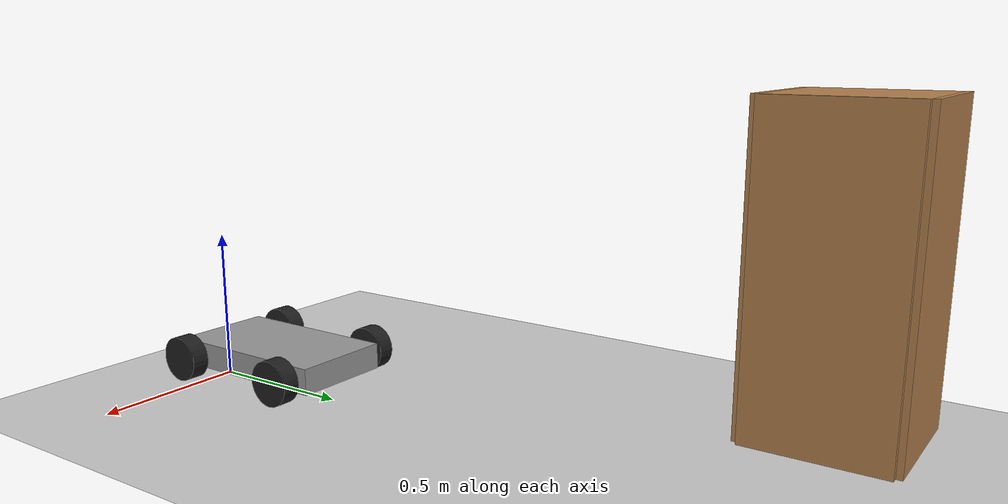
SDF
<sdf version="1.7">
 <world name="default">
  <light name="sun" type="directional">
   <pose>0 0 10 0 -0 0</pose>
   <diffuse>0.8 0.8 0.8 1</diffuse>
   <specular>0.2 0.2 0.2 1</specular>
   <attenuation>
    <range>1000</range>
    <constant>0.9</constant>
    <linear>0.01</linear>
    <quadratic>0.001</quadratic>
   </attenuation>
   <direction>-0.5 0.1 -0.9</direction>
   <spot><inner_angle>0</inner_angle><outer_angle>0</outer_angle><falloff>0</falloff></spot>
  </light>
  <model name="ground_plane">
   <static>1</static>
   <link name="link">
    <collision name="collision">
     <geometry><plane><normal>0 0 1</normal><size>100 100</size></plane></geometry>
     <surface>
      <contact><collide_bitmask>65535</collide_bitmask></contact>
      <friction><ode><mu>100</mu><mu2>50</mu2></ode></friction>
     </surface>
    </collision>
    <visual name="visual">
     <cast_shadows>0</cast_shadows>
     <geometry><plane><normal>0 0 1</normal><size>100 100</size></plane></geometry>
     <material>
      <script><uri>file://media/materials/scripts/gazebo.material</uri><name>Gazebo/Grey</name></script>
     </material>
    </visual>
   </link>
  </model>
  <gravity>0 0 -9.8</gravity>
  <magnetic_field>6e-06 2.3e-05 -4.2e-05</magnetic_field>
  <atmosphere type="adiabatic"/>
  <physics type="ode">
   <max_step_size>0.001</max_step_size>
   <real_time_factor>1</real_time_factor>
   <real_time_update_rate>1000</real_time_update_rate>
  </physics>
  <scene><ambient>0.4 0.4 0.4 1</ambient><background>0.7 0.7 0.7 1</background><shadows>1</shadows></scene>
  <spherical_coordinates>
   <surface_model>EARTH_WGS84</surface_model>
   <latitude_deg>0</latitude_deg>
   <longitude_deg>0</longitude_deg>
   <elevation>0</elevation>
   <heading_deg>0</heading_deg>
  </spherical_coordinates>
  <model name="my_bot">
   <link name="base_link">
    <inertial>
     <pose>0 0 0.08 0 -0 0</pose>
     <mass>1</mass>
     <inertia>
      <ixx>0.0105938</ixx>
      <ixy>0</ixy>
      <ixz>0</ixz>
      <iyy>0.0321937</iyy>
      <iyz>0</iyz>
      <izz>0.0414375</izz>
     </inertia>
    </inertial>
    <collision name="base_link_fixed_joint_lump__sase_collision">
     <pose>0 0 0.08 0 -0 0</pose>
     <geometry><box><size>0.615 0.345 0.09</size></box></geometry>
    </collision>
    <collision name="base_link_fixed_joint_lump__arka_teker_cubugu_collision_1">
     <pose>-0.224 0 0.08 1.5708 -0 0</pose>
     <geometry><cylinder><length>0.49</length><radius>0.01</radius></cylinder></geometry>
    </collision>
    <collision name="base_link_fixed_joint_lump__on_teker_cubugu_collision_2">
     <pose>0.224 0 0.08 1.5708 -0 0</pose>
     <geometry><cylinder><length>0.49</length><radius>0.01</radius></cylinder></geometry>
    </collision>
    <visual name="base_link_fixed_joint_lump__sase_visual">
     <pose>0 0 0.08 0 -0 0</pose>
     <geometry><box><size>0.615 0.345 0.09</size></box></geometry>
     <material>
      <script><name>Gazebo/Grey</name><uri>file://media/materials/scripts/gazebo.material</uri></script>
     </material>
    </visual>
    <visual name="base_link_fixed_joint_lump__arka_teker_cubugu_visual_1">
     <pose>-0.224 0 0.08 1.5708 -0 0</pose>
     <geometry><cylinder><length>0.49</length><radius>0.01</radius></cylinder></geometry>
     <material>
      <script><name>Gazebo/Blue</name><uri>file://media/materials/scripts/gazebo.material</uri></script>
     </material>
    </visual>
    <visual name="base_link_fixed_joint_lump__on_teker_cubugu_visual_2">
     <pose>0.224 0 0.08 1.5708 -0 0</pose>
     <geometry><cylinder><length>0.49</length><radius>0.01</radius></cylinder></geometry>
     <material>
      <script><name>Gazebo/Blue</name><uri>file://media/materials/scripts/gazebo.material</uri></script>
     </material>
    </visual>
   </link>
   <joint name="sag_arka_teker_joint" type="revolute">
    <pose relative_to="base_link">-0.225 0.228 0.0825 -1.5708 0 0</pose>
    <parent>base_link</parent>
    <child>sag_arka_teker</child>
    <axis>
     <xyz>0 0 -1</xyz>
     <limit><lower>-1e+16</lower><upper>1e+16</upper></limit>
     <dynamics><spring_reference>0</spring_reference><spring_stiffness>0</spring_stiffness></dynamics>
    </axis>
   </joint>
   <link name="sag_arka_teker">
    <pose relative_to="sag_arka_teker_joint">0 0 0 0 -0 0</pose>
    <inertial>
     <pose>-0.225 0.228 0.0825 -1.5708 0 0</pose>
     <mass>0.5</mass>
     <inertia>
      <ixx>0.000900781</ixx>
      <ixy>0</ixy>
      <ixz>0</ixz>
      <iyy>0.000900781</iyy>
      <iyz>0</iyz>
      <izz>0.00150156</izz>
     </inertia>
    </inertial>
    <collision name="sag_arka_teker_collision">
     <geometry><cylinder><length>0.06</length><radius>0.0775</radius></cylinder></geometry>
    </collision>
    <visual name="sag_arka_teker_visual">
     <geometry><cylinder><length>0.06</length><radius>0.0775</radius></cylinder></geometry>
     <material>
      <script><name>Gazebo/Black</name><uri>file://media/materials/scripts/gazebo.material</uri></script>
     </material>
    </visual>
   </link>
   <joint name="sag_on_teker_joint" type="revolute">
    <pose relative_to="base_link">0.225 0.228 0.0825 -1.5708 0 0</pose>
    <parent>base_link</parent>
    <child>sag_on_teker</child>
    <axis>
     <xyz>0 0 -1</xyz>
     <limit><lower>-1e+16</lower><upper>1e+16</upper></limit>
     <dynamics><spring_reference>0</spring_reference><spring_stiffness>0</spring_stiffness></dynamics>
    </axis>
   </joint>
   <link name="sag_on_teker">
    <pose relative_to="sag_on_teker_joint">0 0 0 0 -0 0</pose>
    <inertial>
     <pose>0.225 0.228 0.0825 1.5708 -0 0</pose>
     <mass>0.5</mass>
     <inertia>
      <ixx>0.000900781</ixx>
      <ixy>0</ixy>
      <ixz>0</ixz>
      <iyy>0.000900781</iyy>
      <iyz>0</iyz>
      <izz>0.00150156</izz>
     </inertia>
    </inertial>
    <collision name="sag_on_teker_collision">
     <geometry><cylinder><length>0.06</length><radius>0.0775</radius></cylinder></geometry>
    </collision>
    <visual name="sag_on_teker_visual">
     <geometry><cylinder><length>0.06</length><radius>0.0775</radius></cylinder></geometry>
     <material>
      <script><name>Gazebo/Black</name><uri>file://media/materials/scripts/gazebo.material</uri></script>
     </material>
    </visual>
   </link>
   <joint name="sol_arka_teker_joint" type="revolute">
    <pose relative_to="base_link">-0.225 -0.228 0.0825 1.5708 -0 0</pose>
    <parent>base_link</parent>
    <child>sol_arka_teker</child>
    <axis>
     <xyz>0 0 1</xyz>
     <limit><lower>-1e+16</lower><upper>1e+16</upper></limit>
     <dynamics><spring_reference>0</spring_reference><spring_stiffness>0</spring_stiffness></dynamics>
    </axis>
   </joint>
   <link name="sol_arka_teker">
    <pose relative_to="sol_arka_teker_joint">0 0 0 0 -0 0</pose>
    <inertial>
     <pose>-0.225 -0.228 0.0825 -1.5708 0 0</pose>
     <mass>0.5</mass>
     <inertia>
      <ixx>0.000900781</ixx>
      <ixy>0</ixy>
      <ixz>0</ixz>
      <iyy>0.000900781</iyy>
      <iyz>0</iyz>
      <izz>0.00150156</izz>
     </inertia>
    </inertial>
    <collision name="sol_arka_teker_collision">
     <geometry><cylinder><length>0.06</length><radius>0.0775</radius></cylinder></geometry>
    </collision>
    <visual name="sol_arka_teker_visual">
     <geometry><cylinder><length>0.06</length><radius>0.0775</radius></cylinder></geometry>
     <material>
      <script><name>Gazebo/Black</name><uri>file://media/materials/scripts/gazebo.material</uri></script>
     </material>
    </visual>
   </link>
   <joint name="sol_on_teker_joint" type="revolute">
    <pose relative_to="base_link">0.225 -0.228 0.0825 1.5708 -0 0</pose>
    <parent>base_link</parent>
    <child>sol_on_teker</child>
    <axis>
     <xyz>0 0 1</xyz>
     <limit><lower>-1e+16</lower><upper>1e+16</upper></limit>
     <dynamics><spring_reference>0</spring_reference><spring_stiffness>0</spring_stiffness></dynamics>
    </axis>
   </joint>
   <link name="sol_on_teker">
    <pose relative_to="sol_on_teker_joint">0 0 0 0 -0 0</pose>
    <inertial>
     <pose>0.225 -0.228 0.0825 1.5708 -0 0</pose>
     <mass>0.5</mass>
     <inertia>
      <ixx>0.000900781</ixx>
      <ixy>0</ixy>
      <ixz>0</ixz>
      <iyy>0.000900781</iyy>
      <iyz>0</iyz>
      <izz>0.00150156</izz>
     </inertia>
    </inertial>
    <collision name="sol_on_teker_collision">
     <geometry><cylinder><length>0.06</length><radius>0.0775</radius></cylinder></geometry>
    </collision>
    <visual name="sol_on_teker_visual">
     <geometry><cylinder><length>0.06</length><radius>0.0775</radius></cylinder></geometry>
     <material>
      <script><name>Gazebo/Black</name><uri>file://media/materials/scripts/gazebo.material</uri></script>
     </material>
    </visual>
   </link>
   <plugin name="front_wheel" filename="libgazebo_ros_diff_drive.so">
    <left_joint>sol_on_teker_joint</left_joint>
    <right_joint>sag_on_teker_joint</right_joint>
    <wheel_separation>0.44</wheel_separation>
    <wheel_diameter>0.33</wheel_diameter>
    <max_wheel_torque>5</max_wheel_torque>
    <max_wheel_acceleration>5</max_wheel_acceleration>
    <odometry_frame>odom</odometry_frame>
    <robot_base_frame>base_link</robot_base_frame>
    <publish_odom>1</publish_odom>
    <publish_odom_tf>1</publish_odom_tf>
    <publish_wheel_tf>1</publish_wheel_tf>
   </plugin>
   <static>0</static>
   <plugin name="rear_wheel" filename="libgazebo_ros_diff_drive.so">
    <left_joint>sol_arka_teker_joint</left_joint>
    <right_joint>sag_arka_teker_joint</right_joint>
    <wheel_separation>0.44</wheel_separation>
    <wheel_diameter>0.33</wheel_diameter>
    <max_wheel_torque>5</max_wheel_torque>
    <max_wheel_acceleration>5</max_wheel_acceleration>
    <odometry_frame>odom</odometry_frame>
    <robot_base_frame>base_link</robot_base_frame>
    <publish_odom>1</publish_odom>
    <publish_odom_tf>1</publish_odom_tf>
    <publish_wheel_tf>1</publish_wheel_tf>
   </plugin>
   <pose>-0.095385 0.155174 -0.005001 5e-06 1e-06 1.56013</pose>
  </model>
  <model name="cabinet">
   <static>1</static>
   <link name="cabinet_bottom_plate">
    <inertial>
     <pose>0 0 -1 0 -0 0</pose>
     <inertia><ixx>2.05</ixx><ixy>0</ixy><ixz>0</ixz><iyy>2.05</iyy><iyz>0</iyz><izz>2.05</izz></inertia>
     <mass>25</mass>
    </inertial>
    <collision name="cabinet_bottom_plate_geom">
     <pose>0 0 0.01 0 -0 0</pose>
     <geometry><box><size>0.45 0.45 0.02</size></box></geometry>
    </collision>
    <visual name="cabinet_bottom_plate_geom_visual">
     <pose>0 0 0.01 0 -0 0</pose>
     <geometry><box><size>0.45 0.45 0.02</size></box></geometry>
     <material>
      <script><uri>file://media/materials/scripts/gazebo.material</uri><name>Gazebo/Wood</name></script>
     </material>
    </visual>
    <collision name="cabinet_bottom_plate_geom_cabinet_back_plate">
     <pose>0.235 0 0.51 0 -0 0</pose>
     <geometry><box><size>0.02 0.45 1.02</size></box></geometry>
    </collision>
    <visual name="cabinet_bottom_plate_geom_cabinet_back_plate_visual">
     <pose>0.235 0 0.51 0 -0 0</pose>
     <geometry><box><size>0.02 0.45 1.02</size></box></geometry>
     <material>
      <script><uri>file://media/materials/scripts/gazebo.material</uri><name>Gazebo/Wood</name></script>
     </material>
    </visual>
    <collision name="cabinet_bottom_plate_geom_cabinet_left_plate">
     <pose>0 0.235 0.51 0 -0 0</pose>
     <geometry><box><size>0.45 0.02 1.02</size></box></geometry>
    </collision>
    <visual name="cabinet_bottom_plate_geom_cabinet_left_plate_visual">
     <pose>0 0.235 0.51 0 -0 0</pose>
     <geometry><box><size>0.45 0.02 1.02</size></box></geometry>
     <material>
      <script><uri>file://media/materials/scripts/gazebo.material</uri><name>Gazebo/Wood</name></script>
     </material>
    </visual>
    <collision name="cabinet_bottom_plate_geom_cabinet_middle_plate">
     <pose>0 0 0.51 0 -0 0</pose>
     <geometry><box><size>0.45 0.45 0.02</size></box></geometry>
    </collision>
    <visual name="cabinet_bottom_plate_geom_cabinet_middle_plate_visual">
     <pose>0 0 0.51 0 -0 0</pose>
     <geometry><box><size>0.45 0.45 0.02</size></box></geometry>
     <material>
      <script><uri>file://media/materials/scripts/gazebo.material</uri><name>Gazebo/Wood</name></script>
     </material>
    </visual>
    <collision name="cabinet_bottom_plate_geom_cabinet_right_plate">
     <pose>0 -0.235 0.51 0 -0 0</pose>
     <geometry><box><size>0.45 0.02 1.02</size></box></geometry>
    </collision>
    <visual name="cabinet_bottom_plate_geom_cabinet_right_plate_visual">
     <pose>0 -0.235 0.51 0 -0 0</pose>
     <geometry><box><size>0.45 0.02 1.02</size></box></geometry>
     <material>
      <script><uri>file://media/materials/scripts/gazebo.material</uri><name>Gazebo/Wood</name></script>
     </material>
    </visual>
    <collision name="cabinet_bottom_plate_geom_cabinet_top_plate">
     <pose>0 0 1.01 0 -0 0</pose>
     <geometry><box><size>0.45 0.45 0.02</size></box></geometry>
    </collision>
    <visual name="cabinet_bottom_plate_geom_cabinet_top_plate_visual">
     <pose>0 0 1.01 0 -0 0</pose>
     <geometry><box><size>0.45 0.45 0.02</size></box></geometry>
     <material>
      <script><uri>file://media/materials/scripts/gazebo.material</uri><name>Gazebo/Wood</name></script>
     </material>
    </visual>
   </link>
   <pose>-0.642695 1.96711 0 0 -0 0</pose>
  </model>
 </world>
</sdf>
